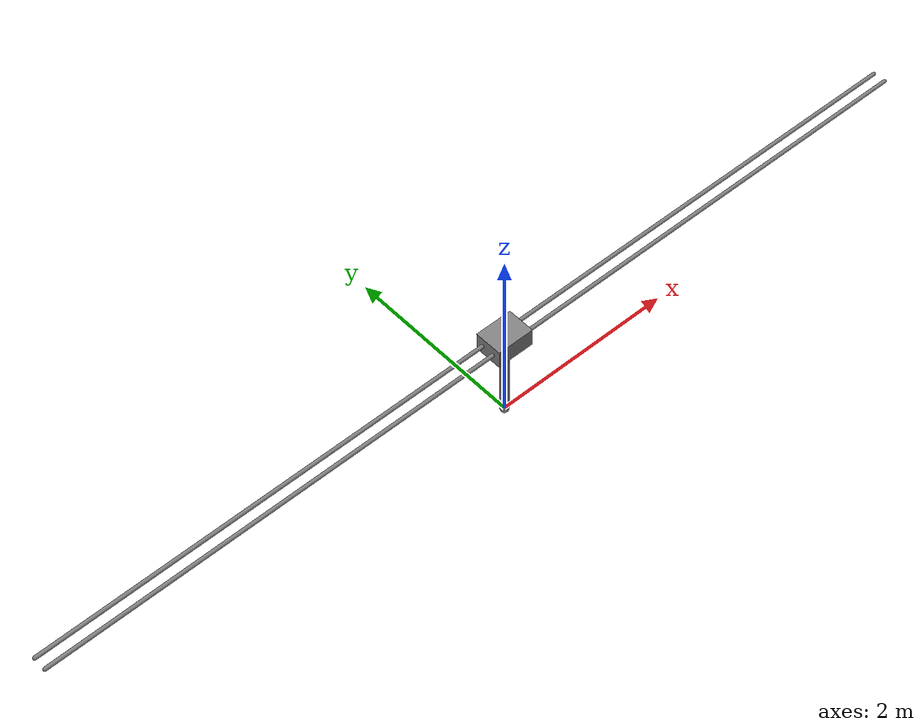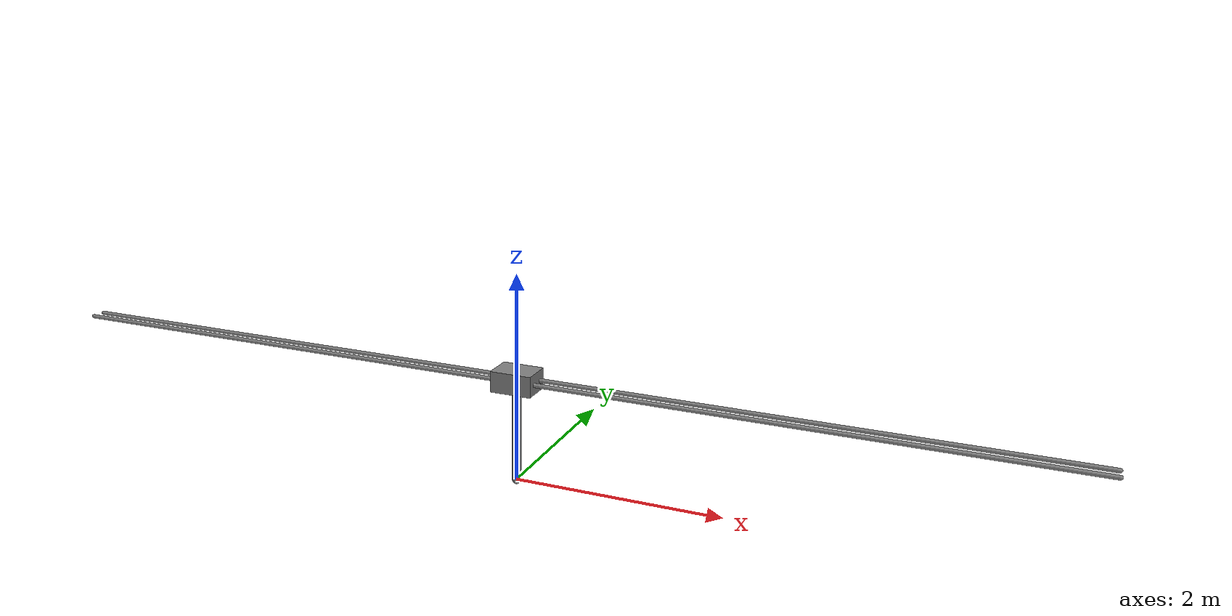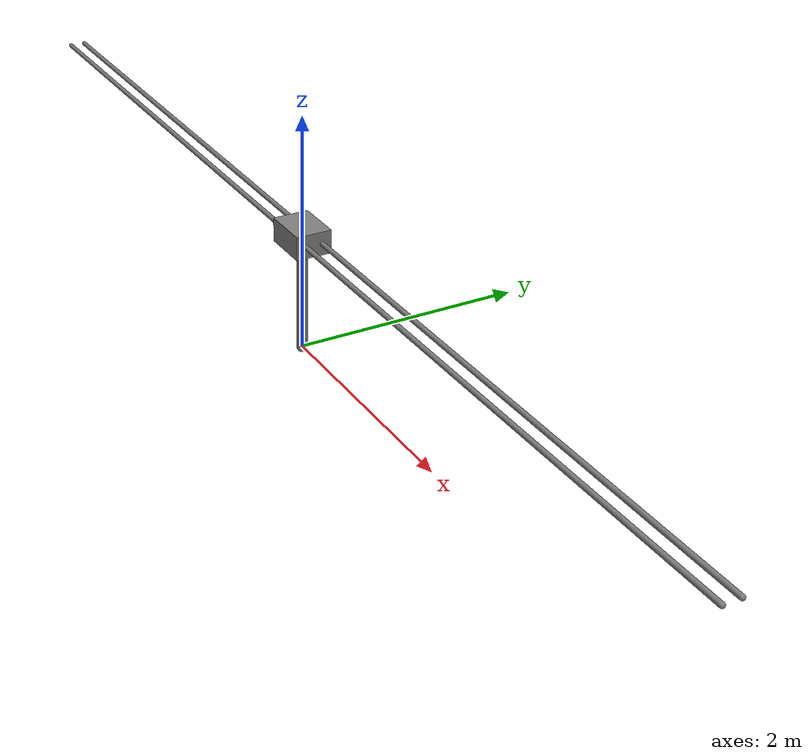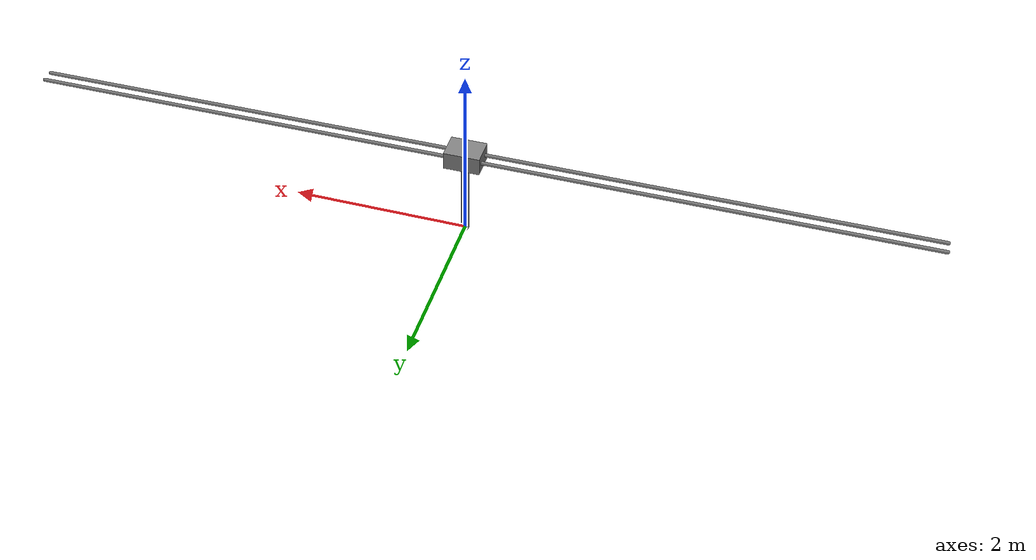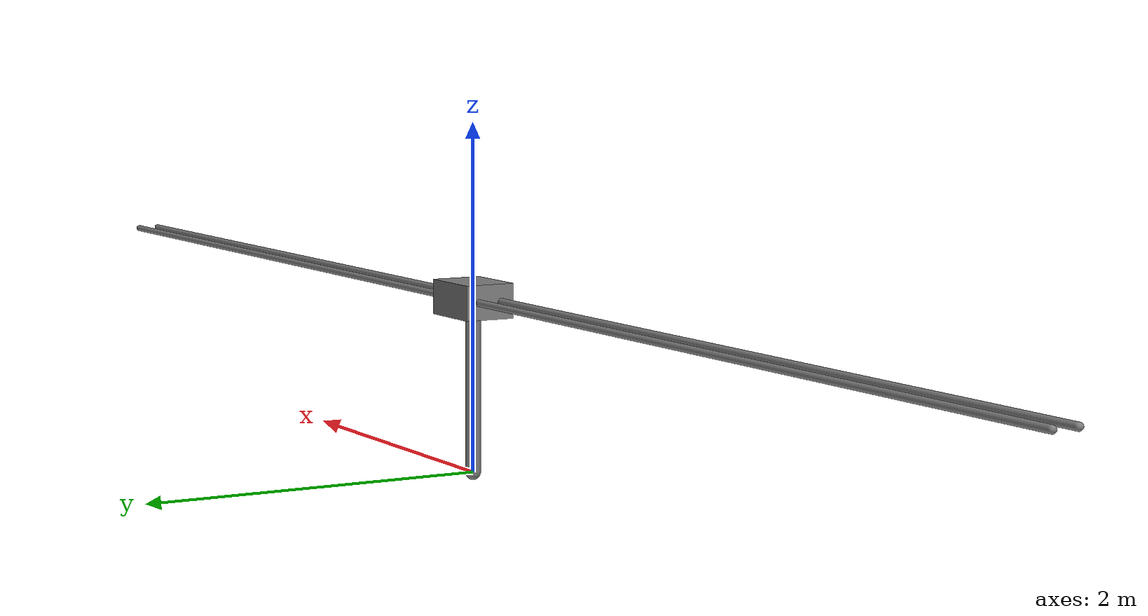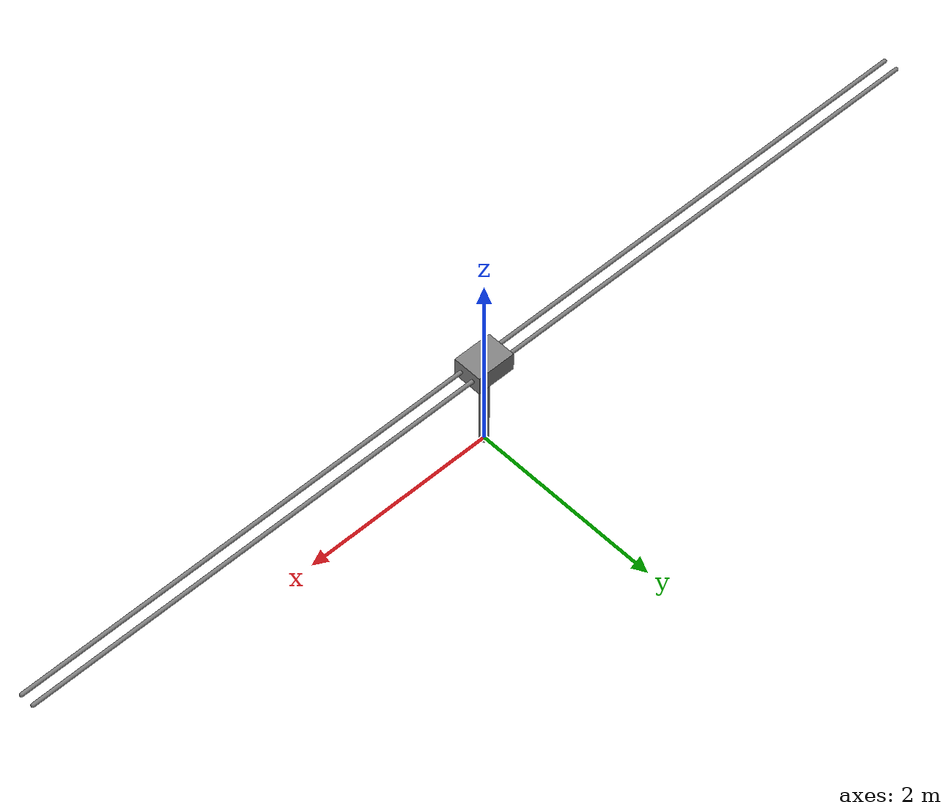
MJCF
<mujoco model="cartpole">
  <option timestep="0.01" iterations="1" ls_iterations="5">
    <flag contact="disable"/>
  </option>

  <default>
    <default class="pole">
      <joint type="hinge" axis="0 1 0"  damping="2e-6"/>
      <geom type="capsule" fromto="0 0 -1 0 0 0" size="0.045" mass=".1"/>
    </default>
  </default>

  <worldbody>
    <light name="light" pos="0 0 6"/>
    <camera name="fixed" pos="0 -4 1" zaxis="0 -1 0"/>
    <camera name="lookatcart" mode="targetbody" target="cart" pos="0 -2 2"/>
    <geom name="rail1" type="capsule" pos="0  .07 1" zaxis="1 0 0" size="0.02 5"/>
    <geom name="rail2" type="capsule" pos="0 -.07 1" zaxis="1 0 0" size="0.02 5"/>
    <body name="cart" pos="0 0 1">
      <joint name="slider" type="slide" limited="true" axis="1 0 0" range="-4.8 4.8" solreflimit=".08 1" damping="1.0e-4"/>
      <geom name="cart" type="box" size="0.2 0.15 0.1" mass="1"/>
      <body name="pole_1" childclass="pole">
        <joint name="hinge_1" damping="1.0e-2"/>
        <geom name="pole_1"/>
        <site name="tip" pos="0 0 -1"/>
      </body>
    </body>
  </worldbody>

  <actuator>
    <motor name="slide" joint="slider" gear="10" ctrllimited="true" ctrlrange="-1 1" />
  </actuator>
</mujoco>
